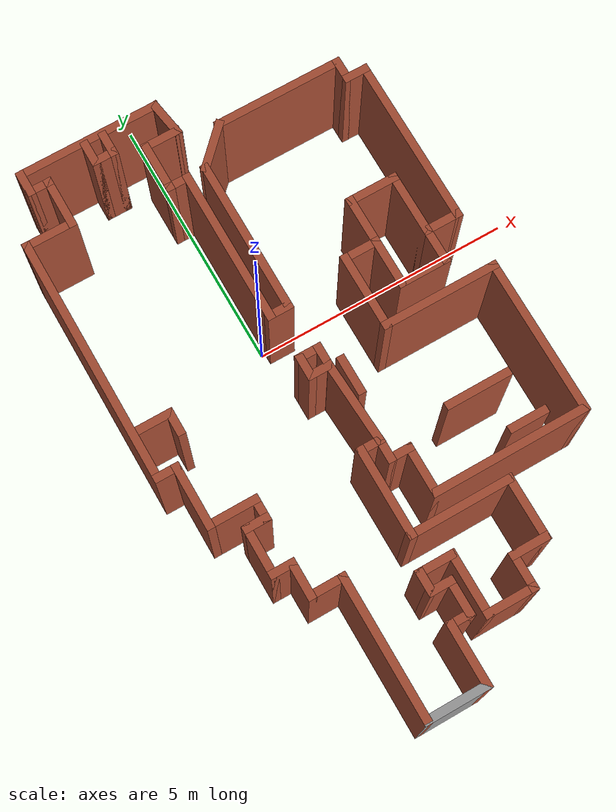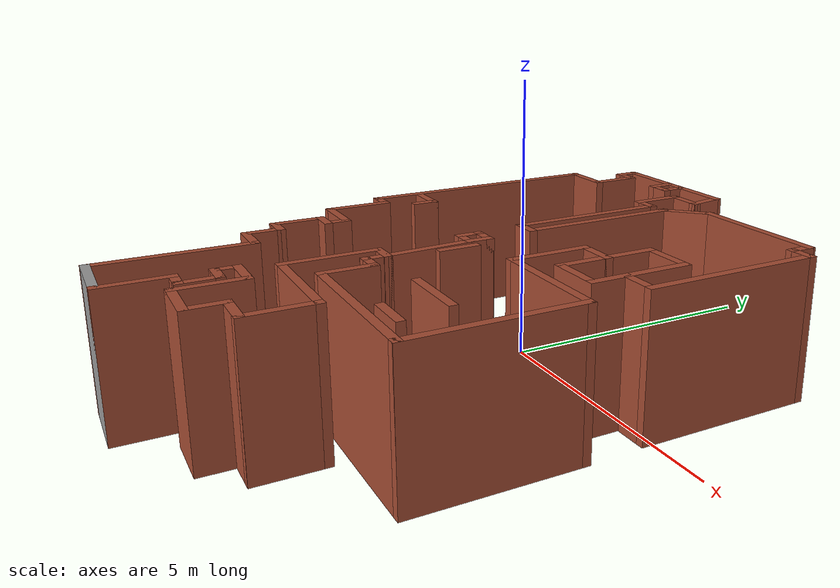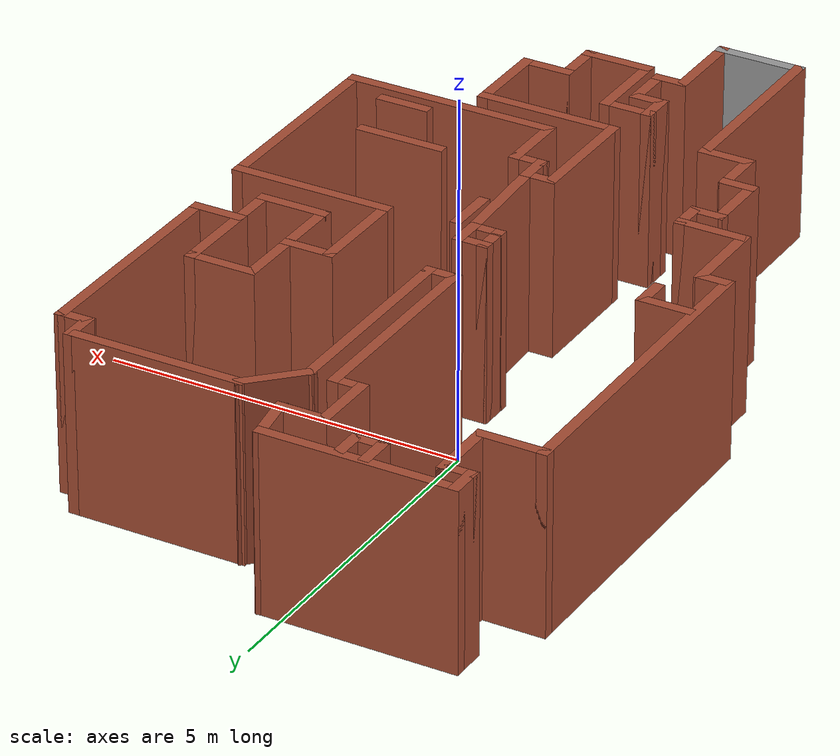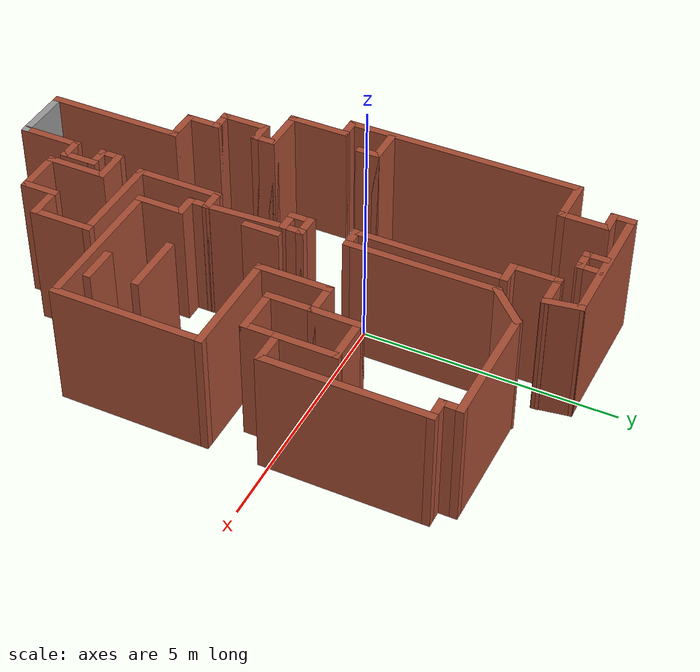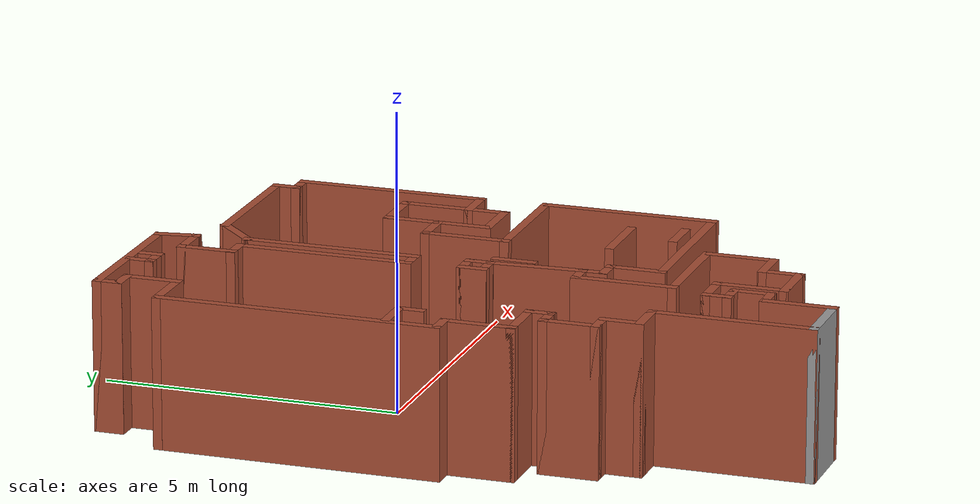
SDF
<?xml version='1.0'?>
<sdf version='1.6'>
  <model name='map_38'>
    <pose frame=''>0.513122 -1.46706 0 0 -0 0</pose>
    <link name='Wall_0'>
      <collision name='Wall_0_Collision'>
        <geometry>
          <box>
            <size>2.75 0.15 2.5</size>
          </box>
        </geometry>
        <pose frame=''>0 0 1.25 0 -0 0</pose>
      </collision>
      <visual name='Wall_0_Visual'>
        <pose frame=''>0 0 1.25 0 -0 0</pose>
        <geometry>
          <box>
            <size>2.75 0.15 2.5</size>
          </box>
        </geometry>
        <material>
          <script>
            <uri>file://media/materials/scripts/gazebo.material</uri>
            <name>Gazebo/Bricks</name>
          </script>
          <ambient>1 1 1 1</ambient>
        </material>
        <meta>
          <layer>0</layer>
        </meta>
      </visual>
      <pose frame=''>-1.525 5.64441 0 0 -0 3.14159</pose>
    </link>
    <link name='Wall_1'>
      <collision name='Wall_1_Collision'>
        <geometry>
          <box>
            <size>0.5 0.15 2.5</size>
          </box>
        </geometry>
        <pose frame=''>0 0 1.25 0 -0 0</pose>
      </collision>
      <visual name='Wall_1_Visual'>
        <pose frame=''>0 0 1.25 0 -0 0</pose>
        <geometry>
          <box>
            <size>0.5 0.15 2.5</size>
          </box>
        </geometry>
        <material>
          <script>
            <uri>file://media/materials/scripts/gazebo.material</uri>
            <name>Gazebo/Bricks</name>
          </script>
          <ambient>1 1 1 1</ambient>
        </material>
        <meta>
          <layer>0</layer>
        </meta>
      </visual>
      <pose frame=''>-2.825 5.46941 0 0 -0 -1.5708</pose>
    </link>
    <link name='Wall_10'>
      <collision name='Wall_10_Collision'>
        <geometry>
          <box>
            <size>0.5 0.15 2.5</size>
          </box>
        </geometry>
        <pose frame=''>0 0 1.25 0 -0 0</pose>
      </collision>
      <visual name='Wall_10_Visual'>
        <pose frame=''>0 0 1.25 0 -0 0</pose>
        <geometry>
          <box>
            <size>0.5 0.15 2.5</size>
          </box>
        </geometry>
        <material>
          <script>
            <uri>file://media/materials/scripts/gazebo.material</uri>
            <name>Gazebo/Bricks</name>
          </script>
          <ambient>1 1 1 1</ambient>
        </material>
        <meta>
          <layer>0</layer>
        </meta>
      </visual>
      <pose frame=''>-2.3 -1.60559 0 0 -0 3.14159</pose>
    </link>
    <link name='Wall_11'>
      <collision name='Wall_11_Collision'>
        <geometry>
          <box>
            <size>1 0.15 2.5</size>
          </box>
        </geometry>
        <pose frame=''>0 0 1.25 0 -0 0</pose>
      </collision>
      <visual name='Wall_11_Visual'>
        <pose frame=''>0 0 1.25 0 -0 0</pose>
        <geometry>
          <box>
            <size>1 0.15 2.5</size>
          </box>
        </geometry>
        <material>
          <script>
            <uri>file://media/materials/scripts/gazebo.material</uri>
            <name>Gazebo/Bricks</name>
          </script>
          <ambient>1 1 1 1</ambient>
        </material>
        <meta>
          <layer>0</layer>
        </meta>
      </visual>
      <pose frame=''>-2.475 -2.03059 0 0 -0 -1.5708</pose>
    </link>
    <link name='Wall_12'>
      <collision name='Wall_12_Collision'>
        <geometry>
          <box>
            <size>0.5 0.15 2.5</size>
          </box>
        </geometry>
        <pose frame=''>0 0 1.25 0 -0 0</pose>
      </collision>
      <visual name='Wall_12_Visual'>
        <pose frame=''>0 0 1.25 0 -0 0</pose>
        <geometry>
          <box>
            <size>0.5 0.15 2.5</size>
          </box>
        </geometry>
        <material>
          <script>
            <uri>file://media/materials/scripts/gazebo.material</uri>
            <name>Gazebo/Bricks</name>
          </script>
          <ambient>1 1 1 1</ambient>
        </material>
        <meta>
          <layer>0</layer>
        </meta>
      </visual>
      <pose frame=''>-2.3 -2.45559 0 0 -0 0</pose>
    </link>
    <link name='Wall_13'>
      <collision name='Wall_13_Collision'>
        <geometry>
          <box>
            <size>0.75 0.15 2.5</size>
          </box>
        </geometry>
        <pose frame=''>0 0 1.25 0 -0 0</pose>
      </collision>
      <visual name='Wall_13_Visual'>
        <pose frame=''>0 0 1.25 0 -0 0</pose>
        <geometry>
          <box>
            <size>0.75 0.15 2.5</size>
          </box>
        </geometry>
        <material>
          <script>
            <uri>file://media/materials/scripts/gazebo.material</uri>
            <name>Gazebo/Bricks</name>
          </script>
          <ambient>1 1 1 1</ambient>
        </material>
        <meta>
          <layer>0</layer>
        </meta>
      </visual>
      <pose frame=''>-2.125 -2.75559 0 0 -0 -1.5708</pose>
    </link>
    <link name='Wall_16'>
      <collision name='Wall_16_Collision'>
        <geometry>
          <box>
            <size>0.75 0.15 2.5</size>
          </box>
        </geometry>
        <pose frame=''>0 0 1.25 0 -0 0</pose>
      </collision>
      <visual name='Wall_16_Visual'>
        <pose frame=''>0 0 1.25 0 -0 0</pose>
        <geometry>
          <box>
            <size>0.75 0.15 2.5</size>
          </box>
        </geometry>
        <material>
          <script>
            <uri>file://media/materials/scripts/gazebo.material</uri>
            <name>Gazebo/Bricks</name>
          </script>
          <ambient>1 1 1 1</ambient>
        </material>
        <meta>
          <layer>0</layer>
        </meta>
      </visual>
      <pose frame=''>-1.825 -3.05559 0 0 -0 0</pose>
    </link>
    <link name='Wall_17'>
      <collision name='Wall_17_Collision'>
        <geometry>
          <box>
            <size>2.75 0.15 2.5</size>
          </box>
        </geometry>
        <pose frame=''>0 0 1.25 0 -0 0</pose>
      </collision>
      <visual name='Wall_17_Visual'>
        <pose frame=''>0 0 1.25 0 -0 0</pose>
        <geometry>
          <box>
            <size>2.75 0.15 2.5</size>
          </box>
        </geometry>
        <material>
          <script>
            <uri>file://media/materials/scripts/gazebo.material</uri>
            <name>Gazebo/Bricks</name>
          </script>
          <ambient>1 1 1 1</ambient>
        </material>
        <meta>
          <layer>0</layer>
        </meta>
      </visual>
      <pose frame=''>-1.525 -4.35559 0 0 -0 -1.5708</pose>
    </link>
    <link name='Wall_2'>
      <collision name='Wall_2_Collision'>
        <geometry>
          <box>
            <size>0.5 0.15 2.5</size>
          </box>
        </geometry>
        <pose frame=''>0 0 1.25 0 -0 0</pose>
      </collision>
      <visual name='Wall_2_Visual'>
        <pose frame=''>0 0 1.25 0 -0 0</pose>
        <geometry>
          <box>
            <size>0.5 0.15 2.5</size>
          </box>
        </geometry>
        <material>
          <script>
            <uri>file://media/materials/scripts/gazebo.material</uri>
            <name>Gazebo/Bricks</name>
          </script>
          <ambient>1 1 1 1</ambient>
        </material>
        <meta>
          <layer>0</layer>
        </meta>
      </visual>
      <pose frame=''>-2.65 5.29441 0 0 -0 0</pose>
    </link>
    <link name='Wall_22'>
      <collision name='Wall_22_Collision'>
        <geometry>
          <box>
            <size>1.25 0.15 2.5</size>
          </box>
        </geometry>
        <pose frame=''>0 0 1.25 0 -0 0</pose>
      </collision>
      <visual name='Wall_22_Visual'>
        <pose frame=''>0 0 1.25 0 -0 0</pose>
        <geometry>
          <box>
            <size>1.25 0.15 2.5</size>
          </box>
        </geometry>
        <material>
          <script>
            <uri>file://media/materials/scripts/gazebo.material</uri>
            <name>Gazebo/Grey</name>
          </script>
          <ambient>1 1 1 1</ambient>
        </material>
        <meta>
          <layer>0</layer>
        </meta>
      </visual>
      <pose frame=''>-0.975 -5.65559 0 0 -0 0</pose>
    </link>
    <link name='Wall_23'>
      <collision name='Wall_23_Collision'>
        <geometry>
          <box>
            <size>1.25 0.15 2.5</size>
          </box>
        </geometry>
        <pose frame=''>0 0 1.25 0 -0 0</pose>
      </collision>
      <visual name='Wall_23_Visual'>
        <pose frame=''>0 0 1.25 0 -0 0</pose>
        <geometry>
          <box>
            <size>1.25 0.15 2.5</size>
          </box>
        </geometry>
        <material>
          <script>
            <uri>file://media/materials/scripts/gazebo.material</uri>
            <name>Gazebo/Bricks</name>
          </script>
          <ambient>1 1 1 1</ambient>
        </material>
        <meta>
          <layer>0</layer>
        </meta>
      </visual>
      <pose frame=''>-0.425 -5.10559 0 0 -0 1.5708</pose>
    </link>
    <link name='Wall_24'>
      <collision name='Wall_24_Collision'>
        <geometry>
          <box>
            <size>0.5 0.15 2.5</size>
          </box>
        </geometry>
        <pose frame=''>0 0 1.25 0 -0 0</pose>
      </collision>
      <visual name='Wall_24_Visual'>
        <pose frame=''>0 0 1.25 0 -0 0</pose>
        <geometry>
          <box>
            <size>0.5 0.15 2.5</size>
          </box>
        </geometry>
        <material>
          <script>
            <uri>file://media/materials/scripts/gazebo.material</uri>
            <name>Gazebo/Bricks</name>
          </script>
          <ambient>1 1 1 1</ambient>
        </material>
        <meta>
          <layer>0</layer>
        </meta>
      </visual>
      <pose frame=''>-0.25 -4.55559 0 0 -0 0</pose>
    </link>
    <link name='Wall_25'>
      <collision name='Wall_25_Collision'>
        <geometry>
          <box>
            <size>0.75 0.15 2.5</size>
          </box>
        </geometry>
        <pose frame=''>0 0 1.25 0 -0 0</pose>
      </collision>
      <visual name='Wall_25_Visual'>
        <pose frame=''>0 0 1.25 0 -0 0</pose>
        <geometry>
          <box>
            <size>0.75 0.15 2.5</size>
          </box>
        </geometry>
        <material>
          <script>
            <uri>file://media/materials/scripts/gazebo.material</uri>
            <name>Gazebo/Bricks</name>
          </script>
          <ambient>1 1 1 1</ambient>
        </material>
        <meta>
          <layer>0</layer>
        </meta>
      </visual>
      <pose frame=''>-0.075 -4.25559 0 0 -0 1.5708</pose>
    </link>
    <link name='Wall_26'>
      <collision name='Wall_26_Collision'>
        <geometry>
          <box>
            <size>0.5 0.15 2.5</size>
          </box>
        </geometry>
        <pose frame=''>0 0 1.25 0 -0 0</pose>
      </collision>
      <visual name='Wall_26_Visual'>
        <pose frame=''>0 0 1.25 0 -0 0</pose>
        <geometry>
          <box>
            <size>0.5 0.15 2.5</size>
          </box>
        </geometry>
        <material>
          <script>
            <uri>file://media/materials/scripts/gazebo.material</uri>
            <name>Gazebo/Bricks</name>
          </script>
          <ambient>1 1 1 1</ambient>
        </material>
        <meta>
          <layer>0</layer>
        </meta>
      </visual>
      <pose frame=''>-0.25 -3.95559 0 0 -0 3.14159</pose>
    </link>
    <link name='Wall_27'>
      <collision name='Wall_27_Collision'>
        <geometry>
          <box>
            <size>0.5 0.15 2.5</size>
          </box>
        </geometry>
        <pose frame=''>0 0 1.25 0 -0 0</pose>
      </collision>
      <visual name='Wall_27_Visual'>
        <pose frame=''>0 0 1.25 0 -0 0</pose>
        <geometry>
          <box>
            <size>0.5 0.15 2.5</size>
          </box>
        </geometry>
        <material>
          <script>
            <uri>file://media/materials/scripts/gazebo.material</uri>
            <name>Gazebo/Bricks</name>
          </script>
          <ambient>1 1 1 1</ambient>
        </material>
        <meta>
          <layer>0</layer>
        </meta>
      </visual>
      <pose frame=''>-0.425 -3.78059 0 0 -0 1.5708</pose>
    </link>
    <link name='Wall_28'>
      <collision name='Wall_28_Collision'>
        <geometry>
          <box>
            <size>0.75 0.15 2.5</size>
          </box>
        </geometry>
        <pose frame=''>0 0 1.25 0 -0 0</pose>
      </collision>
      <visual name='Wall_28_Visual'>
        <pose frame=''>0 0 1.25 0 -0 0</pose>
        <geometry>
          <box>
            <size>0.75 0.15 2.5</size>
          </box>
        </geometry>
        <material>
          <script>
            <uri>file://media/materials/scripts/gazebo.material</uri>
            <name>Gazebo/Bricks</name>
          </script>
          <ambient>1 1 1 1</ambient>
        </material>
        <meta>
          <layer>0</layer>
        </meta>
      </visual>
      <pose frame=''>-0.125 -3.60559 0 0 -0 0</pose>
    </link>
    <link name='Wall_29'>
      <collision name='Wall_29_Collision'>
        <geometry>
          <box>
            <size>1.25 0.15 2.5</size>
          </box>
        </geometry>
        <pose frame=''>0 0 1.25 0 -0 0</pose>
      </collision>
      <visual name='Wall_29_Visual'>
        <pose frame=''>0 0 1.25 0 -0 0</pose>
        <geometry>
          <box>
            <size>1.25 0.15 2.5</size>
          </box>
        </geometry>
        <material>
          <script>
            <uri>file://media/materials/scripts/gazebo.material</uri>
            <name>Gazebo/Bricks</name>
          </script>
          <ambient>1 1 1 1</ambient>
        </material>
        <meta>
          <layer>0</layer>
        </meta>
      </visual>
      <pose frame=''>0.175 -4.15559 0 0 -0 -1.5708</pose>
    </link>
    <link name='Wall_3'>
      <collision name='Wall_3_Collision'>
        <geometry>
          <box>
            <size>1 0.15 2.5</size>
          </box>
        </geometry>
        <pose frame=''>0 0 1.25 0 -0 0</pose>
      </collision>
      <visual name='Wall_3_Visual'>
        <pose frame=''>0 0 1.25 0 -0 0</pose>
        <geometry>
          <box>
            <size>1 0.15 2.5</size>
          </box>
        </geometry>
        <material>
          <script>
            <uri>file://media/materials/scripts/gazebo.material</uri>
            <name>Gazebo/Bricks</name>
          </script>
          <ambient>1 1 1 1</ambient>
        </material>
        <meta>
          <layer>0</layer>
        </meta>
      </visual>
      <pose frame=''>-2.475 4.86941 0 0 -0 -1.5708</pose>
    </link>
    <link name='Wall_30'>
      <collision name='Wall_30_Collision'>
        <geometry>
          <box>
            <size>1 0.15 2.5</size>
          </box>
        </geometry>
        <pose frame=''>0 0 1.25 0 -0 0</pose>
      </collision>
      <visual name='Wall_30_Visual'>
        <pose frame=''>0 0 1.25 0 -0 0</pose>
        <geometry>
          <box>
            <size>1 0.15 2.5</size>
          </box>
        </geometry>
        <material>
          <script>
            <uri>file://media/materials/scripts/gazebo.material</uri>
            <name>Gazebo/Bricks</name>
          </script>
          <ambient>1 1 1 1</ambient>
        </material>
        <meta>
          <layer>0</layer>
        </meta>
      </visual>
      <pose frame=''>0.6 -4.70559 0 0 -0 0</pose>
    </link>
    <link name='Wall_34'>
      <collision name='Wall_34_Collision'>
        <geometry>
          <box>
            <size>0.75 0.15 2.5</size>
          </box>
        </geometry>
        <pose frame=''>0 0 1.25 0 -0 0</pose>
      </collision>
      <visual name='Wall_34_Visual'>
        <pose frame=''>0 0 1.25 0 -0 0</pose>
        <geometry>
          <box>
            <size>0.75 0.15 2.5</size>
          </box>
        </geometry>
        <material>
          <script>
            <uri>file://media/materials/scripts/gazebo.material</uri>
            <name>Gazebo/Bricks</name>
          </script>
          <ambient>1 1 1 1</ambient>
        </material>
        <meta>
          <layer>0</layer>
        </meta>
      </visual>
      <pose frame=''>1.025 -4.40559 0 0 -0 1.5708</pose>
    </link>
    <link name='Wall_35'>
      <collision name='Wall_35_Collision'>
        <geometry>
          <box>
            <size>0.75 0.15 2.5</size>
          </box>
        </geometry>
        <pose frame=''>0 0 1.25 0 -0 0</pose>
      </collision>
      <visual name='Wall_35_Visual'>
        <pose frame=''>0 0 1.25 0 -0 0</pose>
        <geometry>
          <box>
            <size>0.75 0.15 2.5</size>
          </box>
        </geometry>
        <material>
          <script>
            <uri>file://media/materials/scripts/gazebo.material</uri>
            <name>Gazebo/Bricks</name>
          </script>
          <ambient>1 1 1 1</ambient>
        </material>
        <meta>
          <layer>0</layer>
        </meta>
      </visual>
      <pose frame=''>1.325 -4.10559 0 0 -0 0</pose>
    </link>
    <link name='Wall_36'>
      <collision name='Wall_36_Collision'>
        <geometry>
          <box>
            <size>1.25 0.15 2.5</size>
          </box>
        </geometry>
        <pose frame=''>0 0 1.25 0 -0 0</pose>
      </collision>
      <visual name='Wall_36_Visual'>
        <pose frame=''>0 0 1.25 0 -0 0</pose>
        <geometry>
          <box>
            <size>1.25 0.15 2.5</size>
          </box>
        </geometry>
        <material>
          <script>
            <uri>file://media/materials/scripts/gazebo.material</uri>
            <name>Gazebo/Bricks</name>
          </script>
          <ambient>1 1 1 1</ambient>
        </material>
        <meta>
          <layer>0</layer>
        </meta>
      </visual>
      <pose frame=''>1.625 -3.55559 0 0 -0 1.5708</pose>
    </link>
    <link name='Wall_37'>
      <collision name='Wall_37_Collision'>
        <geometry>
          <box>
            <size>2 0.15 2.5</size>
          </box>
        </geometry>
        <pose frame=''>0 0 1.25 0 -0 0</pose>
      </collision>
      <visual name='Wall_37_Visual'>
        <pose frame=''>0 0 1.25 0 -0 0</pose>
        <geometry>
          <box>
            <size>2 0.15 2.5</size>
          </box>
        </geometry>
        <material>
          <script>
            <uri>file://media/materials/scripts/gazebo.material</uri>
            <name>Gazebo/Bricks</name>
          </script>
          <ambient>1 1 1 1</ambient>
        </material>
        <meta>
          <layer>0</layer>
        </meta>
      </visual>
      <pose frame=''>0.7 -3.00559 0 0 -0 3.14159</pose>
    </link>
    <link name='Wall_38'>
      <collision name='Wall_38_Collision'>
        <geometry>
          <box>
            <size>1.75 0.15 2.5</size>
          </box>
        </geometry>
        <pose frame=''>0 0 1.25 0 -0 0</pose>
      </collision>
      <visual name='Wall_38_Visual'>
        <pose frame=''>0 0 1.25 0 -0 0</pose>
        <geometry>
          <box>
            <size>1.75 0.15 2.5</size>
          </box>
        </geometry>
        <material>
          <script>
            <uri>file://media/materials/scripts/gazebo.material</uri>
            <name>Gazebo/Bricks</name>
          </script>
          <ambient>1 1 1 1</ambient>
        </material>
        <meta>
          <layer>0</layer>
        </meta>
      </visual>
      <pose frame=''>-0.225 -2.20559 0 0 -0 1.5708</pose>
    </link>
    <link name='Wall_39'>
      <collision name='Wall_39_Collision'>
        <geometry>
          <box>
            <size>0.5 0.15 2.5</size>
          </box>
        </geometry>
        <pose frame=''>0 0 1.25 0 -0 0</pose>
      </collision>
      <visual name='Wall_39_Visual'>
        <pose frame=''>0 0 1.25 0 -0 0</pose>
        <geometry>
          <box>
            <size>0.5 0.15 2.5</size>
          </box>
        </geometry>
        <material>
          <script>
            <uri>file://media/materials/scripts/gazebo.material</uri>
            <name>Gazebo/Bricks</name>
          </script>
          <ambient>1 1 1 1</ambient>
        </material>
        <meta>
          <layer>0</layer>
        </meta>
      </visual>
      <pose frame=''>-0.05 -1.40559 0 0 -0 0</pose>
    </link>
    <link name='Wall_4'>
      <collision name='Wall_4_Collision'>
        <geometry>
          <box>
            <size>1 0.15 2.5</size>
          </box>
        </geometry>
        <pose frame=''>0 0 1.25 0 -0 0</pose>
      </collision>
      <visual name='Wall_4_Visual'>
        <pose frame=''>0 0 1.25 0 -0 0</pose>
        <geometry>
          <box>
            <size>1 0.15 2.5</size>
          </box>
        </geometry>
        <material>
          <script>
            <uri>file://media/materials/scripts/gazebo.material</uri>
            <name>Gazebo/Bricks</name>
          </script>
          <ambient>1 1 1 1</ambient>
        </material>
        <meta>
          <layer>0</layer>
        </meta>
      </visual>
      <pose frame=''>-2.9 4.44441 0 0 -0 3.14159</pose>
    </link>
    <link name='Wall_40'>
      <collision name='Wall_40_Collision'>
        <geometry>
          <box>
            <size>0.5 0.15 2.5</size>
          </box>
        </geometry>
        <pose frame=''>0 0 1.25 0 -0 0</pose>
      </collision>
      <visual name='Wall_40_Visual'>
        <pose frame=''>0 0 1.25 0 -0 0</pose>
        <geometry>
          <box>
            <size>0.5 0.15 2.5</size>
          </box>
        </geometry>
        <material>
          <script>
            <uri>file://media/materials/scripts/gazebo.material</uri>
            <name>Gazebo/Bricks</name>
          </script>
          <ambient>1 1 1 1</ambient>
        </material>
        <meta>
          <layer>0</layer>
        </meta>
      </visual>
      <pose frame=''>0.125 -1.58059 0 0 -0 -1.5708</pose>
    </link>
    <link name='Wall_41'>
      <collision name='Wall_41_Collision'>
        <geometry>
          <box>
            <size>0.5 0.15 2.5</size>
          </box>
        </geometry>
        <pose frame=''>0 0 1.25 0 -0 0</pose>
      </collision>
      <visual name='Wall_41_Visual'>
        <pose frame=''>0 0 1.25 0 -0 0</pose>
        <geometry>
          <box>
            <size>0.5 0.15 2.5</size>
          </box>
        </geometry>
        <material>
          <script>
            <uri>file://media/materials/scripts/gazebo.material</uri>
            <name>Gazebo/Bricks</name>
          </script>
          <ambient>1 1 1 1</ambient>
        </material>
        <meta>
          <layer>0</layer>
        </meta>
      </visual>
      <pose frame=''>0.3 -1.75559 0 0 -0 0</pose>
    </link>
    <link name='Wall_42'>
      <collision name='Wall_42_Collision'>
        <geometry>
          <box>
            <size>1 0.15 2.5</size>
          </box>
        </geometry>
        <pose frame=''>0 0 1.25 0 -0 0</pose>
      </collision>
      <visual name='Wall_42_Visual'>
        <pose frame=''>0 0 1.25 0 -0 0</pose>
        <geometry>
          <box>
            <size>1 0.15 2.5</size>
          </box>
        </geometry>
        <material>
          <script>
            <uri>file://media/materials/scripts/gazebo.material</uri>
            <name>Gazebo/Bricks</name>
          </script>
          <ambient>1 1 1 1</ambient>
        </material>
        <meta>
          <layer>0</layer>
        </meta>
      </visual>
      <pose frame=''>0.475 -2.18059 0 0 -0 -1.5708</pose>
    </link>
    <link name='Wall_43'>
      <collision name='Wall_43_Collision'>
        <geometry>
          <box>
            <size>3 0.15 2.5</size>
          </box>
        </geometry>
        <pose frame=''>0 0 1.25 0 -0 0</pose>
      </collision>
      <visual name='Wall_43_Visual'>
        <pose frame=''>0 0 1.25 0 -0 0</pose>
        <geometry>
          <box>
            <size>3 0.15 2.5</size>
          </box>
        </geometry>
        <material>
          <script>
            <uri>file://media/materials/scripts/gazebo.material</uri>
            <name>Gazebo/Bricks</name>
          </script>
          <ambient>1 1 1 1</ambient>
        </material>
        <meta>
          <layer>0</layer>
        </meta>
      </visual>
      <pose frame=''>1.9 -2.60559 0 0 -0 0</pose>
    </link>
    <link name='Wall_44'>
      <collision name='Wall_44_Collision'>
        <geometry>
          <box>
            <size>3 0.15 2.5</size>
          </box>
        </geometry>
        <pose frame=''>0 0 1.25 0 -0 0</pose>
      </collision>
      <visual name='Wall_44_Visual'>
        <pose frame=''>0 0 1.25 0 -0 0</pose>
        <geometry>
          <box>
            <size>3 0.15 2.5</size>
          </box>
        </geometry>
        <material>
          <script>
            <uri>file://media/materials/scripts/gazebo.material</uri>
            <name>Gazebo/Bricks</name>
          </script>
          <ambient>1 1 1 1</ambient>
        </material>
        <meta>
          <layer>0</layer>
        </meta>
      </visual>
      <pose frame=''>3.325 -1.18059 0 0 -0 1.5708</pose>
    </link>
    <link name='Wall_45'>
      <collision name='Wall_45_Collision'>
        <geometry>
          <box>
            <size>2.25 0.15 2.5</size>
          </box>
        </geometry>
        <pose frame=''>0 0 1.25 0 -0 0</pose>
      </collision>
      <visual name='Wall_45_Visual'>
        <pose frame=''>0 0 1.25 0 -0 0</pose>
        <geometry>
          <box>
            <size>2.25 0.15 2.5</size>
          </box>
        </geometry>
        <material>
          <script>
            <uri>file://media/materials/scripts/gazebo.material</uri>
            <name>Gazebo/Bricks</name>
          </script>
          <ambient>1 1 1 1</ambient>
        </material>
        <meta>
          <layer>0</layer>
        </meta>
      </visual>
      <pose frame=''>2.275 0.244406 0 0 -0 3.14159</pose>
    </link>
    <link name='Wall_46'>
      <collision name='Wall_46_Collision'>
        <geometry>
          <box>
            <size>1.5 0.15 2.5</size>
          </box>
        </geometry>
        <pose frame=''>0 0 1.25 0 -0 0</pose>
      </collision>
      <visual name='Wall_46_Visual'>
        <pose frame=''>0 0 1.25 0 -0 0</pose>
        <geometry>
          <box>
            <size>1.5 0.15 2.5</size>
          </box>
        </geometry>
        <material>
          <script>
            <uri>file://media/materials/scripts/gazebo.material</uri>
            <name>Gazebo/Bricks</name>
          </script>
          <ambient>1 1 1 1</ambient>
        </material>
        <meta>
          <layer>0</layer>
        </meta>
      </visual>
      <pose frame=''>1.225 0.919406 0 0 -0 1.5708</pose>
    </link>
    <link name='Wall_47'>
      <collision name='Wall_47_Collision'>
        <geometry>
          <box>
            <size>0.75 0.15 2.5</size>
          </box>
        </geometry>
        <pose frame=''>0 0 1.25 0 -0 0</pose>
      </collision>
      <visual name='Wall_47_Visual'>
        <pose frame=''>0 0 1.25 0 -0 0</pose>
        <geometry>
          <box>
            <size>0.75 0.15 2.5</size>
          </box>
        </geometry>
        <material>
          <script>
            <uri>file://media/materials/scripts/gazebo.material</uri>
            <name>Gazebo/Bricks</name>
          </script>
          <ambient>1 1 1 1</ambient>
        </material>
        <meta>
          <layer>0</layer>
        </meta>
      </visual>
      <pose frame=''>1.525 1.59441 0 0 -0 0</pose>
    </link>
    <link name='Wall_48'>
      <collision name='Wall_48_Collision'>
        <geometry>
          <box>
            <size>1 0.15 2.5</size>
          </box>
        </geometry>
        <pose frame=''>0 0 1.25 0 -0 0</pose>
      </collision>
      <visual name='Wall_48_Visual'>
        <pose frame=''>0 0 1.25 0 -0 0</pose>
        <geometry>
          <box>
            <size>1 0.15 2.5</size>
          </box>
        </geometry>
        <material>
          <script>
            <uri>file://media/materials/scripts/gazebo.material</uri>
            <name>Gazebo/Bricks</name>
          </script>
          <ambient>1 1 1 1</ambient>
        </material>
        <meta>
          <layer>0</layer>
        </meta>
      </visual>
      <pose frame=''>1.825 1.16941 0 0 -0 -1.5708</pose>
    </link>
    <link name='Wall_49'>
      <collision name='Wall_49_Collision'>
        <geometry>
          <box>
            <size>1 0.15 2.5</size>
          </box>
        </geometry>
        <pose frame=''>0 0 1.25 0 -0 0</pose>
      </collision>
      <visual name='Wall_49_Visual'>
        <pose frame=''>0 0 1.25 0 -0 0</pose>
        <geometry>
          <box>
            <size>1 0.15 2.5</size>
          </box>
        </geometry>
        <material>
          <script>
            <uri>file://media/materials/scripts/gazebo.material</uri>
            <name>Gazebo/Bricks</name>
          </script>
          <ambient>1 1 1 1</ambient>
        </material>
        <meta>
          <layer>0</layer>
        </meta>
      </visual>
      <pose frame=''>2.25 0.744406 0 0 -0 0</pose>
    </link>
    <link name='Wall_5'>
      <collision name='Wall_5_Collision'>
        <geometry>
          <box>
            <size>4.75 0.15 2.5</size>
          </box>
        </geometry>
        <pose frame=''>0 0 1.25 0 -0 0</pose>
      </collision>
      <visual name='Wall_5_Visual'>
        <pose frame=''>0 0 1.25 0 -0 0</pose>
        <geometry>
          <box>
            <size>4.75 0.15 2.5</size>
          </box>
        </geometry>
        <material>
          <script>
            <uri>file://media/materials/scripts/gazebo.material</uri>
            <name>Gazebo/Bricks</name>
          </script>
          <ambient>1 1 1 1</ambient>
        </material>
        <meta>
          <layer>0</layer>
        </meta>
      </visual>
      <pose frame=''>-3.325 2.14441 0 0 -0 -1.5708</pose>
    </link>
    <link name='Wall_50'>
      <collision name='Wall_50_Collision'>
        <geometry>
          <box>
            <size>0.75 0.15 2.5</size>
          </box>
        </geometry>
        <pose frame=''>0 0 1.25 0 -0 0</pose>
      </collision>
      <visual name='Wall_50_Visual'>
        <pose frame=''>0 0 1.25 0 -0 0</pose>
        <geometry>
          <box>
            <size>0.75 0.15 2.5</size>
          </box>
        </geometry>
        <material>
          <script>
            <uri>file://media/materials/scripts/gazebo.material</uri>
            <name>Gazebo/Bricks</name>
          </script>
          <ambient>1 1 1 1</ambient>
        </material>
        <meta>
          <layer>0</layer>
        </meta>
      </visual>
      <pose frame=''>2.675 1.04441 0 0 -0 1.5708</pose>
    </link>
    <link name='Wall_51'>
      <collision name='Wall_51_Collision'>
        <geometry>
          <box>
            <size>0.75 0.15 2.5</size>
          </box>
        </geometry>
        <pose frame=''>0 0 1.25 0 -0 0</pose>
      </collision>
      <visual name='Wall_51_Visual'>
        <pose frame=''>0 0 1.25 0 -0 0</pose>
        <geometry>
          <box>
            <size>0.75 0.15 2.5</size>
          </box>
        </geometry>
        <material>
          <script>
            <uri>file://media/materials/scripts/gazebo.material</uri>
            <name>Gazebo/Bricks</name>
          </script>
          <ambient>1 1 1 1</ambient>
        </material>
        <meta>
          <layer>0</layer>
        </meta>
      </visual>
      <pose frame=''>2.975 1.34441 0 0 -0 0</pose>
    </link>
    <link name='Wall_52'>
      <collision name='Wall_52_Collision'>
        <geometry>
          <box>
            <size>3.25 0.15 2.5</size>
          </box>
        </geometry>
        <pose frame=''>0 0 1.25 0 -0 0</pose>
      </collision>
      <visual name='Wall_52_Visual'>
        <pose frame=''>0 0 1.25 0 -0 0</pose>
        <geometry>
          <box>
            <size>3.25 0.15 2.5</size>
          </box>
        </geometry>
        <material>
          <script>
            <uri>file://media/materials/scripts/gazebo.material</uri>
            <name>Gazebo/Bricks</name>
          </script>
          <ambient>1 1 1 1</ambient>
        </material>
        <meta>
          <layer>0</layer>
        </meta>
      </visual>
      <pose frame=''>3.275 2.89441 0 0 -0 1.5708</pose>
    </link>
    <link name='Wall_53'>
      <collision name='Wall_53_Collision'>
        <geometry>
          <box>
            <size>0.5 0.15 2.5</size>
          </box>
        </geometry>
        <pose frame=''>0 0 1.25 0 -0 0</pose>
      </collision>
      <visual name='Wall_53_Visual'>
        <pose frame=''>0 0 1.25 0 -0 0</pose>
        <geometry>
          <box>
            <size>0.5 0.15 2.5</size>
          </box>
        </geometry>
        <material>
          <script>
            <uri>file://media/materials/scripts/gazebo.material</uri>
            <name>Gazebo/Bricks</name>
          </script>
          <ambient>1 1 1 1</ambient>
        </material>
        <meta>
          <layer>0</layer>
        </meta>
      </visual>
      <pose frame=''>3.1 4.44441 0 0 -0 3.14159</pose>
    </link>
    <link name='Wall_54'>
      <collision name='Wall_54_Collision'>
        <geometry>
          <box>
            <size>0.5 0.15 2.5</size>
          </box>
        </geometry>
        <pose frame=''>0 0 1.25 0 -0 0</pose>
      </collision>
      <visual name='Wall_54_Visual'>
        <pose frame=''>0 0 1.25 0 -0 0</pose>
        <geometry>
          <box>
            <size>0.5 0.15 2.5</size>
          </box>
        </geometry>
        <material>
          <script>
            <uri>file://media/materials/scripts/gazebo.material</uri>
            <name>Gazebo/Bricks</name>
          </script>
          <ambient>1 1 1 1</ambient>
        </material>
        <meta>
          <layer>0</layer>
        </meta>
      </visual>
      <pose frame=''>2.925 4.61941 0 0 -0 1.5708</pose>
    </link>
    <link name='Wall_55'>
      <collision name='Wall_55_Collision'>
        <geometry>
          <box>
            <size>2.5 0.15 2.5</size>
          </box>
        </geometry>
        <pose frame=''>0 0 1.25 0 -0 0</pose>
      </collision>
      <visual name='Wall_55_Visual'>
        <pose frame=''>0 0 1.25 0 -0 0</pose>
        <geometry>
          <box>
            <size>2.5 0.15 2.5</size>
          </box>
        </geometry>
        <material>
          <script>
            <uri>file://media/materials/scripts/gazebo.material</uri>
            <name>Gazebo/Bricks</name>
          </script>
          <ambient>1 1 1 1</ambient>
        </material>
        <meta>
          <layer>0</layer>
        </meta>
      </visual>
      <pose frame=''>1.75 4.79441 0 0 -0 3.14159</pose>
    </link>
    <link name='Wall_56'>
      <collision name='Wall_56_Collision'>
        <geometry>
          <box>
            <size>1 0.15 2.5</size>
          </box>
        </geometry>
        <pose frame=''>0 0 1.25 0 -0 0</pose>
      </collision>
      <visual name='Wall_56_Visual'>
        <pose frame=''>0 0 1.25 0 -0 0</pose>
        <geometry>
          <box>
            <size>1 0.15 2.5</size>
          </box>
        </geometry>
        <material>
          <script>
            <uri>file://media/materials/scripts/gazebo.material</uri>
            <name>Gazebo/Bricks</name>
          </script>
          <ambient>1 1 1 1</ambient>
        </material>
        <meta>
          <layer>0</layer>
        </meta>
      </visual>
      <pose frame=''>0.27448 4.49389 0 0 -0 -2.35619</pose>
    </link>
    <link name='Wall_57'>
      <collision name='Wall_57_Collision'>
        <geometry>
          <box>
            <size>3 0.15 2.5</size>
          </box>
        </geometry>
        <pose frame=''>0 0 1.25 0 -0 0</pose>
      </collision>
      <visual name='Wall_57_Visual'>
        <pose frame=''>0 0 1.25 0 -0 0</pose>
        <geometry>
          <box>
            <size>3 0.15 2.5</size>
          </box>
        </geometry>
        <material>
          <script>
            <uri>file://media/materials/scripts/gazebo.material</uri>
            <name>Gazebo/Bricks</name>
          </script>
          <ambient>1 1 1 1</ambient>
        </material>
        <meta>
          <layer>0</layer>
        </meta>
      </visual>
      <pose frame=''>-0.026041 2.76837 0 0 -0 -1.5708</pose>
    </link>
    <link name='Wall_58'>
      <collision name='Wall_58_Collision'>
        <geometry>
          <box>
            <size>0.5 0.15 2.5</size>
          </box>
        </geometry>
        <pose frame=''>0 0 1.25 0 -0 0</pose>
      </collision>
      <visual name='Wall_58_Visual'>
        <pose frame=''>0 0 1.25 0 -0 0</pose>
        <geometry>
          <box>
            <size>0.5 0.15 2.5</size>
          </box>
        </geometry>
        <material>
          <script>
            <uri>file://media/materials/scripts/gazebo.material</uri>
            <name>Gazebo/Bricks</name>
          </script>
          <ambient>1 1 1 1</ambient>
        </material>
        <meta>
          <layer>0</layer>
        </meta>
      </visual>
      <pose frame=''>-0.201041 1.34336 0 0 -0 3.14159</pose>
    </link>
    <link name='Wall_59'>
      <collision name='Wall_59_Collision'>
        <geometry>
          <box>
            <size>3 0.15 2.5</size>
          </box>
        </geometry>
        <pose frame=''>0 0 1.25 0 -0 0</pose>
      </collision>
      <visual name='Wall_59_Visual'>
        <pose frame=''>0 0 1.25 0 -0 0</pose>
        <geometry>
          <box>
            <size>3 0.15 2.5</size>
          </box>
        </geometry>
        <material>
          <script>
            <uri>file://media/materials/scripts/gazebo.material</uri>
            <name>Gazebo/Bricks</name>
          </script>
          <ambient>1 1 1 1</ambient>
        </material>
        <meta>
          <layer>0</layer>
        </meta>
      </visual>
      <pose frame=''>-0.376041 2.76837 0 0 -0 1.5708</pose>
    </link>
    <link name='Wall_6'>
      <collision name='Wall_6_Collision'>
        <geometry>
          <box>
            <size>0.5 0.15 2.5</size>
          </box>
        </geometry>
        <pose frame=''>0 0 1.25 0 -0 0</pose>
      </collision>
      <visual name='Wall_6_Visual'>
        <pose frame=''>0 0 1.25 0 -0 0</pose>
        <geometry>
          <box>
            <size>0.5 0.15 2.5</size>
          </box>
        </geometry>
        <material>
          <script>
            <uri>file://media/materials/scripts/gazebo.material</uri>
            <name>Gazebo/Bricks</name>
          </script>
          <ambient>1 1 1 1</ambient>
        </material>
        <meta>
          <layer>0</layer>
        </meta>
      </visual>
      <pose frame=''>-3.15 -0.155594 0 0 -0 0</pose>
    </link>
    <link name='Wall_60'>
      <collision name='Wall_60_Collision'>
        <geometry>
          <box>
            <size>0.5 0.15 2.5</size>
          </box>
        </geometry>
        <pose frame=''>0 0 1.25 0 -0 0</pose>
      </collision>
      <visual name='Wall_60_Visual'>
        <pose frame=''>0 0 1.25 0 -0 0</pose>
        <geometry>
          <box>
            <size>0.5 0.15 2.5</size>
          </box>
        </geometry>
        <material>
          <script>
            <uri>file://media/materials/scripts/gazebo.material</uri>
            <name>Gazebo/Bricks</name>
          </script>
          <ambient>1 1 1 1</ambient>
        </material>
        <meta>
          <layer>0</layer>
        </meta>
      </visual>
      <pose frame=''>-0.551041 4.19337 0 0 -0 3.14159</pose>
    </link>
    <link name='Wall_61'>
      <collision name='Wall_61_Collision'>
        <geometry>
          <box>
            <size>1 0.15 2.5</size>
          </box>
        </geometry>
        <pose frame=''>0 0 1.25 0 -0 0</pose>
      </collision>
      <visual name='Wall_61_Visual'>
        <pose frame=''>0 0 1.25 0 -0 0</pose>
        <geometry>
          <box>
            <size>1 0.15 2.5</size>
          </box>
        </geometry>
        <material>
          <script>
            <uri>file://media/materials/scripts/gazebo.material</uri>
            <name>Gazebo/Bricks</name>
          </script>
          <ambient>1 1 1 1</ambient>
        </material>
        <meta>
          <layer>0</layer>
        </meta>
      </visual>
      <pose frame=''>-0.726041 4.61836 0 0 -0 1.5708</pose>
    </link>
    <link name='Wall_62'>
      <collision name='Wall_62_Collision'>
        <geometry>
          <box>
            <size>0.75 0.15 2.5</size>
          </box>
        </geometry>
        <pose frame=''>0 0 1.25 0 -0 0</pose>
      </collision>
      <visual name='Wall_62_Visual'>
        <pose frame=''>0 0 1.25 0 -0 0</pose>
        <geometry>
          <box>
            <size>0.75 0.15 2.5</size>
          </box>
        </geometry>
        <material>
          <script>
            <uri>file://media/materials/scripts/gazebo.material</uri>
            <name>Gazebo/Bricks</name>
          </script>
          <ambient>1 1 1 1</ambient>
        </material>
        <meta>
          <layer>0</layer>
        </meta>
      </visual>
      <pose frame=''>-0.426041 5.04336 0 0 -0 0</pose>
    </link>
    <link name='Wall_63'>
      <collision name='Wall_63_Collision'>
        <geometry>
          <box>
            <size>0.759133 0.15 2.5</size>
          </box>
        </geometry>
        <pose frame=''>0 0 1.25 0 -0 0</pose>
      </collision>
      <visual name='Wall_63_Visual'>
        <pose frame=''>0 0 1.25 0 -0 0</pose>
        <geometry>
          <box>
            <size>0.759133 0.15 2.5</size>
          </box>
        </geometry>
        <material>
          <script>
            <uri>file://media/materials/scripts/gazebo.material</uri>
            <name>Gazebo/Bricks</name>
          </script>
          <ambient>1 1 1 1</ambient>
        </material>
        <meta>
          <layer>0</layer>
        </meta>
      </visual>
      <pose frame=''>-0.17552 5.34389 0 0 -0 1.73398</pose>
    </link>
    <link name='Wall_65'>
      <collision name='Wall_65_Collision'>
        <geometry>
          <box>
            <size>1 0.15 2.5</size>
          </box>
        </geometry>
        <pose frame=''>0 0 1.25 0 -0 0</pose>
      </collision>
      <visual name='Wall_65_Visual'>
        <pose frame=''>0 0 1.25 0 -0 0</pose>
        <geometry>
          <box>
            <size>1 0.15 2.5</size>
          </box>
        </geometry>
        <material>
          <script>
            <uri>file://media/materials/scripts/gazebo.material</uri>
            <name>Gazebo/Bricks</name>
          </script>
          <ambient>1 1 1 1</ambient>
        </material>
        <meta>
          <layer>0</layer>
        </meta>
      </visual>
      <pose frame=''>1.825 2.01941 0 0 -0 1.5708</pose>
    </link>
    <link name='Wall_66'>
      <collision name='Wall_66_Collision'>
        <geometry>
          <box>
            <size>1 0.15 2.5</size>
          </box>
        </geometry>
        <pose frame=''>0 0 1.25 0 -0 0</pose>
      </collision>
      <visual name='Wall_66_Visual'>
        <pose frame=''>0 0 1.25 0 -0 0</pose>
        <geometry>
          <box>
            <size>1 0.15 2.5</size>
          </box>
        </geometry>
        <material>
          <script>
            <uri>file://media/materials/scripts/gazebo.material</uri>
            <name>Gazebo/Bricks</name>
          </script>
          <ambient>1 1 1 1</ambient>
        </material>
        <meta>
          <layer>0</layer>
        </meta>
      </visual>
      <pose frame=''>2.25 2.44441 0 0 -0 0</pose>
    </link>
    <link name='Wall_67'>
      <collision name='Wall_67_Collision'>
        <geometry>
          <box>
            <size>1.25 0.15 2.5</size>
          </box>
        </geometry>
        <pose frame=''>0 0 1.25 0 -0 0</pose>
      </collision>
      <visual name='Wall_67_Visual'>
        <pose frame=''>0 0 1.25 0 -0 0</pose>
        <geometry>
          <box>
            <size>1.25 0.15 2.5</size>
          </box>
        </geometry>
        <material>
          <script>
            <uri>file://media/materials/scripts/gazebo.material</uri>
            <name>Gazebo/Bricks</name>
          </script>
          <ambient>1 1 1 1</ambient>
        </material>
        <meta>
          <layer>0</layer>
        </meta>
      </visual>
      <pose frame=''>2.675 1.89441 0 0 -0 -1.5708</pose>
    </link>
    <link name='Wall_69'>
      <collision name='Wall_69_Collision'>
        <geometry>
          <box>
            <size>1.25 0.15 2.5</size>
          </box>
        </geometry>
        <pose frame=''>0 0 1.25 0 -0 0</pose>
      </collision>
      <visual name='Wall_69_Visual'>
        <pose frame=''>0 0 1.25 0 -0 0</pose>
        <geometry>
          <box>
            <size>1.25 0.15 2.5</size>
          </box>
        </geometry>
        <material>
          <script>
            <uri>file://media/materials/scripts/gazebo.material</uri>
            <name>Gazebo/Bricks</name>
          </script>
          <ambient>1 1 1 1</ambient>
        </material>
        <meta>
          <layer>0</layer>
        </meta>
      </visual>
      <pose frame=''>1.97421 -1.45785 0 0 -0 0</pose>
    </link>
    <link name='Wall_7'>
      <collision name='Wall_7_Collision'>
        <geometry>
          <box>
            <size>1.25 0.15 2.5</size>
          </box>
        </geometry>
        <pose frame=''>0 0 1.25 0 -0 0</pose>
      </collision>
      <visual name='Wall_7_Visual'>
        <pose frame=''>0 0 1.25 0 -0 0</pose>
        <geometry>
          <box>
            <size>1.25 0.15 2.5</size>
          </box>
        </geometry>
        <material>
          <script>
            <uri>file://media/materials/scripts/gazebo.material</uri>
            <name>Gazebo/Bricks</name>
          </script>
          <ambient>1 1 1 1</ambient>
        </material>
        <meta>
          <layer>0</layer>
        </meta>
      </visual>
      <pose frame=''>-2.975 -0.705594 0 0 -0 -1.5708</pose>
    </link>
    <link name='Wall_71'>
      <collision name='Wall_71_Collision'>
        <geometry>
          <box>
            <size>0.75 0.15 2.5</size>
          </box>
        </geometry>
        <pose frame=''>0 0 1.25 0 -0 0</pose>
      </collision>
      <visual name='Wall_71_Visual'>
        <pose frame=''>0 0 1.25 0 -0 0</pose>
        <geometry>
          <box>
            <size>0.75 0.15 2.5</size>
          </box>
        </geometry>
        <material>
          <script>
            <uri>file://media/materials/scripts/gazebo.material</uri>
            <name>Gazebo/Bricks</name>
          </script>
          <ambient>1 1 1 1</ambient>
        </material>
        <meta>
          <layer>0</layer>
        </meta>
      </visual>
      <pose frame=''>2.41582 -2.30905 0 0 -0 0</pose>
    </link>
    <link name='Wall_73'>
      <collision name='Wall_73_Collision'>
        <geometry>
          <box>
            <size>0.75 0.15 2.5</size>
          </box>
        </geometry>
        <pose frame=''>0 0 1.25 0 -0 0</pose>
      </collision>
      <visual name='Wall_73_Visual'>
        <pose frame=''>0 0 1.25 0 -0 0</pose>
        <geometry>
          <box>
            <size>0.75 0.15 2.5</size>
          </box>
        </geometry>
        <material>
          <script>
            <uri>file://media/materials/scripts/gazebo.material</uri>
            <name>Gazebo/Bricks</name>
          </script>
          <ambient>1 1 1 1</ambient>
        </material>
        <meta>
          <layer>0</layer>
        </meta>
      </visual>
      <pose frame=''>-2.93082 0.696769 0 0 -0 0</pose>
    </link>
    <link name='Wall_74'>
      <collision name='Wall_74_Collision'>
        <geometry>
          <box>
            <size>0.5 0.15 2.5</size>
          </box>
        </geometry>
        <pose frame=''>0 0 1.25 0 -0 0</pose>
      </collision>
      <visual name='Wall_74_Visual'>
        <pose frame=''>0 0 1.25 0 -0 0</pose>
        <geometry>
          <box>
            <size>0.5 0.15 2.5</size>
          </box>
        </geometry>
        <material>
          <script>
            <uri>file://media/materials/scripts/gazebo.material</uri>
            <name>Gazebo/Bricks</name>
          </script>
          <ambient>1 1 1 1</ambient>
        </material>
        <meta>
          <layer>0</layer>
        </meta>
      </visual>
      <pose frame=''>-2.63082 0.521769 0 0 -0 -1.5708</pose>
    </link>
    <link name='Wall_76'>
      <collision name='Wall_76_Collision'>
        <geometry>
          <box>
            <size>0.5 0.15 2.5</size>
          </box>
        </geometry>
        <pose frame=''>0 0 1.25 0 -0 0</pose>
      </collision>
      <visual name='Wall_76_Visual'>
        <pose frame=''>0 0 1.25 0 -0 0</pose>
        <geometry>
          <box>
            <size>0.5 0.15 2.5</size>
          </box>
        </geometry>
        <material>
          <script>
            <uri>file://media/materials/scripts/gazebo.material</uri>
            <name>Gazebo/Bricks</name>
          </script>
          <ambient>1 1 1 1</ambient>
        </material>
        <meta>
          <layer>0</layer>
        </meta>
      </visual>
      <pose frame=''>-1.60821 5.41621 0 0 -0 -1.5708</pose>
    </link>
    <link name='Wall_77'>
      <collision name='Wall_77_Collision'>
        <geometry>
          <box>
            <size>0.5 0.15 2.5</size>
          </box>
        </geometry>
        <pose frame=''>0 0 1.25 0 -0 0</pose>
      </collision>
      <visual name='Wall_77_Visual'>
        <pose frame=''>0 0 1.25 0 -0 0</pose>
        <geometry>
          <box>
            <size>0.5 0.15 2.5</size>
          </box>
        </geometry>
        <material>
          <script>
            <uri>file://media/materials/scripts/gazebo.material</uri>
            <name>Gazebo/Bricks</name>
          </script>
          <ambient>1 1 1 1</ambient>
        </material>
        <meta>
          <layer>0</layer>
        </meta>
      </visual>
      <pose frame=''>-1.43321 5.24121 0 0 -0 0</pose>
    </link>
    <link name='Wall_78'>
      <collision name='Wall_78_Collision'>
        <geometry>
          <box>
            <size>0.5 0.15 2.5</size>
          </box>
        </geometry>
        <pose frame=''>0 0 1.25 0 -0 0</pose>
      </collision>
      <visual name='Wall_78_Visual'>
        <pose frame=''>0 0 1.25 0 -0 0</pose>
        <geometry>
          <box>
            <size>0.5 0.15 2.5</size>
          </box>
        </geometry>
        <material>
          <script>
            <uri>file://media/materials/scripts/gazebo.material</uri>
            <name>Gazebo/Bricks</name>
          </script>
          <ambient>1 1 1 1</ambient>
        </material>
        <meta>
          <layer>0</layer>
        </meta>
      </visual>
      <pose frame=''>-1.25821 5.41621 0 0 -0 1.5708</pose>
    </link>
    <link name='Wall_8'>
      <collision name='Wall_8_Collision'>
        <geometry>
          <box>
            <size>1 0.15 2.5</size>
          </box>
        </geometry>
        <pose frame=''>0 0 1.25 0 -0 0</pose>
      </collision>
      <visual name='Wall_8_Visual'>
        <pose frame=''>0 0 1.25 0 -0 0</pose>
        <geometry>
          <box>
            <size>1 0.15 2.5</size>
          </box>
        </geometry>
        <material>
          <script>
            <uri>file://media/materials/scripts/gazebo.material</uri>
            <name>Gazebo/Bricks</name>
          </script>
          <ambient>1 1 1 1</ambient>
        </material>
        <meta>
          <layer>0</layer>
        </meta>
      </visual>
      <pose frame=''>-2.55 -1.25559 0 0 -0 0</pose>
    </link>
    <link name='Wall_80'>
      <collision name='Wall_80_Collision'>
        <geometry>
          <box>
            <size>0.5 0.15 2.5</size>
          </box>
        </geometry>
        <pose frame=''>0 0 1.25 0 -0 0</pose>
      </collision>
      <visual name='Wall_80_Visual'>
        <pose frame=''>0 0 1.25 0 -0 0</pose>
        <geometry>
          <box>
            <size>0.5 0.15 2.5</size>
          </box>
        </geometry>
        <material>
          <script>
            <uri>file://media/materials/scripts/gazebo.material</uri>
            <name>Gazebo/Bricks</name>
          </script>
          <ambient>1 1 1 1</ambient>
        </material>
        <meta>
          <layer>0</layer>
        </meta>
      </visual>
      <pose frame=''>-0.304801 0.282367 0 0 -0 -1.5708</pose>
    </link>
    <link name='Wall_81'>
      <collision name='Wall_81_Collision'>
        <geometry>
          <box>
            <size>0.5 0.15 2.5</size>
          </box>
        </geometry>
        <pose frame=''>0 0 1.25 0 -0 0</pose>
      </collision>
      <visual name='Wall_81_Visual'>
        <pose frame=''>0 0 1.25 0 -0 0</pose>
        <geometry>
          <box>
            <size>0.5 0.15 2.5</size>
          </box>
        </geometry>
        <material>
          <script>
            <uri>file://media/materials/scripts/gazebo.material</uri>
            <name>Gazebo/Bricks</name>
          </script>
          <ambient>1 1 1 1</ambient>
        </material>
        <meta>
          <layer>0</layer>
        </meta>
      </visual>
      <pose frame=''>-0.129801 0.107367 0 0 -0 0</pose>
    </link>
    <link name='Wall_82'>
      <collision name='Wall_82_Collision'>
        <geometry>
          <box>
            <size>0.5 0.15 2.5</size>
          </box>
        </geometry>
        <pose frame=''>0 0 1.25 0 -0 0</pose>
      </collision>
      <visual name='Wall_82_Visual'>
        <pose frame=''>0 0 1.25 0 -0 0</pose>
        <geometry>
          <box>
            <size>0.5 0.15 2.5</size>
          </box>
        </geometry>
        <material>
          <script>
            <uri>file://media/materials/scripts/gazebo.material</uri>
            <name>Gazebo/Bricks</name>
          </script>
          <ambient>1 1 1 1</ambient>
        </material>
        <meta>
          <layer>0</layer>
        </meta>
      </visual>
      <pose frame=''>0.045199 0.282367 0 0 -0 1.5708</pose>
    </link>
    <link name='Wall_83'>
      <collision name='Wall_83_Collision'>
        <geometry>
          <box>
            <size>0.5 0.15 2.5</size>
          </box>
        </geometry>
        <pose frame=''>0 0 1.25 0 -0 0</pose>
      </collision>
      <visual name='Wall_83_Visual'>
        <pose frame=''>0 0 1.25 0 -0 0</pose>
        <geometry>
          <box>
            <size>0.5 0.15 2.5</size>
          </box>
        </geometry>
        <material>
          <script>
            <uri>file://media/materials/scripts/gazebo.material</uri>
            <name>Gazebo/Bricks</name>
          </script>
          <ambient>1 1 1 1</ambient>
        </material>
        <meta>
          <layer>0</layer>
        </meta>
      </visual>
      <pose frame=''>-0.129801 0.457367 0 0 -0 3.14159</pose>
    </link>
    <link name='Wall_85'>
      <collision name='Wall_85_Collision'>
        <geometry>
          <box>
            <size>1.66506 0.15 2.5</size>
          </box>
        </geometry>
        <pose frame=''>0 0 1.25 0 -0 0</pose>
      </collision>
      <visual name='Wall_85_Visual'>
        <pose frame=''>0 0 1.25 0 -0 0</pose>
        <geometry>
          <box>
            <size>1.66506 0.15 2.5</size>
          </box>
        </geometry>
        <material>
          <script>
            <uri>file://media/materials/scripts/gazebo.material</uri>
            <name>Gazebo/Bricks</name>
          </script>
          <ambient>1 1 1 1</ambient>
        </material>
        <meta>
          <layer>0</layer>
        </meta>
      </visual>
      <pose frame=''>0.0851 -0.649113 0 0 -0 -1.5181</pose>
    </link>
    <link name='Wall_87'>
      <collision name='Wall_87_Collision'>
        <geometry>
          <box>
            <size>0.75 0.15 2.5</size>
          </box>
        </geometry>
        <pose frame=''>0 0 1.25 0 -0 0</pose>
      </collision>
      <visual name='Wall_87_Visual'>
        <pose frame=''>0 0 1.25 0 -0 0</pose>
        <geometry>
          <box>
            <size>0.75 0.15 2.5</size>
          </box>
        </geometry>
        <material>
          <script>
            <uri>file://media/materials/scripts/gazebo.material</uri>
            <name>Gazebo/Bricks</name>
          </script>
          <ambient>1 1 1 1</ambient>
        </material>
        <meta>
          <layer>0</layer>
        </meta>
      </visual>
      <pose frame=''>0.280404 -0.215035 0 0 -0 -1.5708</pose>
    </link>
    <link name='Wall_9'>
      <collision name='Wall_9_Collision'>
        <geometry>
          <box>
            <size>0.5 0.15 2.5</size>
          </box>
        </geometry>
        <pose frame=''>0 0 1.25 0 -0 0</pose>
      </collision>
      <visual name='Wall_9_Visual'>
        <pose frame=''>0 0 1.25 0 -0 0</pose>
        <geometry>
          <box>
            <size>0.5 0.15 2.5</size>
          </box>
        </geometry>
        <material>
          <script>
            <uri>file://media/materials/scripts/gazebo.material</uri>
            <name>Gazebo/Bricks</name>
          </script>
          <ambient>1 1 1 1</ambient>
        </material>
        <meta>
          <layer>0</layer>
        </meta>
      </visual>
      <pose frame=''>-2.125 -1.43059 0 0 -0 -1.5708</pose>
    </link>
    <static>1</static>
  </model>
</sdf>
